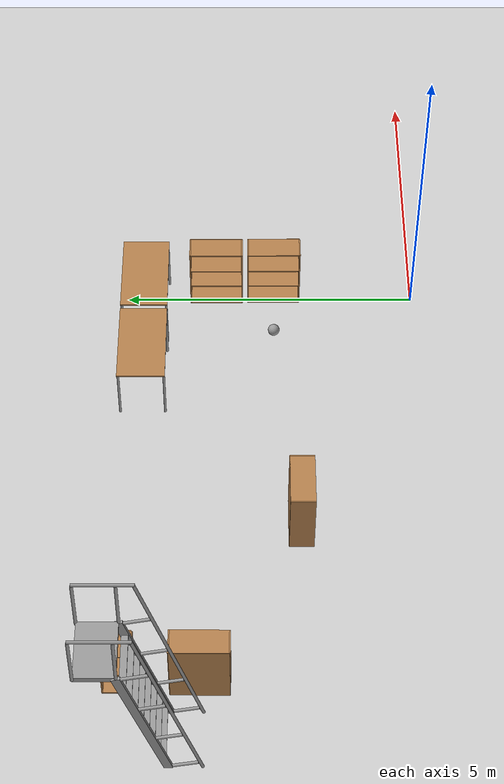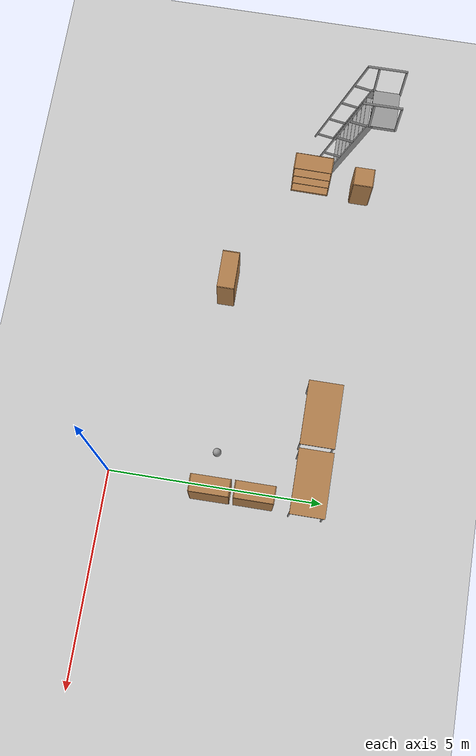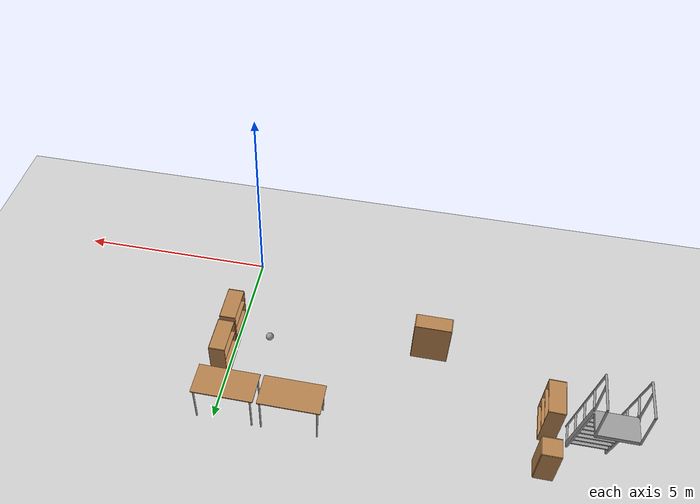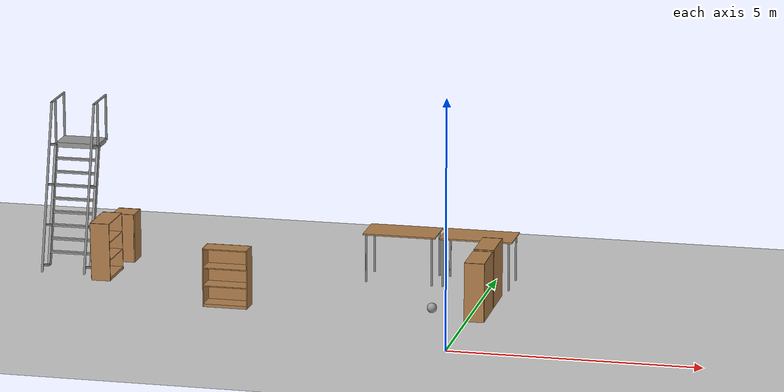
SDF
<sdf version="1.6">
 <world name="default">
  <model name="ground_plane">
   <static>1</static>
   <link name="link">
    <collision name="collision">
     <geometry><plane><normal>0 0 1</normal><size>100 100</size></plane></geometry>
     <surface>
      <contact><collide_bitmask>65535</collide_bitmask></contact>
      <friction><ode><mu>100</mu><mu2>50</mu2></ode></friction>
     </surface>
    </collision>
    <visual name="visual">
     <cast_shadows>0</cast_shadows>
     <geometry><plane><normal>0 0 1</normal><size>100 100</size></plane></geometry>
     <material>
      <script><uri>file://media/materials/scripts/gazebo.material</uri><name>Gazebo/Grey</name></script>
     </material>
    </visual>
   </link>
  </model>
  <model name="cabinet">
   <static>1</static>
   <link name="cabinet_bottom_plate">
    <inertial>
     <pose>0 0 -1 0 -0 0</pose>
     <inertia><ixx>2.05</ixx><ixy>0</ixy><ixz>0</ixz><iyy>2.05</iyy><iyz>0</iyz><izz>2.05</izz></inertia>
     <mass>25</mass>
    </inertial>
    <collision name="cabinet_bottom_plate_geom">
     <pose>0 0 0.01 0 -0 0</pose>
     <geometry><box><size>0.45 0.45 0.02</size></box></geometry>
    </collision>
    <visual name="cabinet_bottom_plate_geom_visual">
     <pose>0 0 0.01 0 -0 0</pose>
     <geometry><box><size>0.45 0.45 0.02</size></box></geometry>
     <material>
      <script><uri>file://media/materials/scripts/gazebo.material</uri><name>Gazebo/Wood</name></script>
     </material>
    </visual>
    <collision name="cabinet_bottom_plate_geom_cabinet_back_plate">
     <pose>0.235 0 0.51 0 -0 0</pose>
     <geometry><box><size>0.02 0.45 1.02</size></box></geometry>
    </collision>
    <visual name="cabinet_bottom_plate_geom_cabinet_back_plate_visual">
     <pose>0.235 0 0.51 0 -0 0</pose>
     <geometry><box><size>0.02 0.45 1.02</size></box></geometry>
     <material>
      <script><uri>file://media/materials/scripts/gazebo.material</uri><name>Gazebo/Wood</name></script>
     </material>
    </visual>
    <collision name="cabinet_bottom_plate_geom_cabinet_left_plate">
     <pose>0 0.235 0.51 0 -0 0</pose>
     <geometry><box><size>0.45 0.02 1.02</size></box></geometry>
    </collision>
    <visual name="cabinet_bottom_plate_geom_cabinet_left_plate_visual">
     <pose>0 0.235 0.51 0 -0 0</pose>
     <geometry><box><size>0.45 0.02 1.02</size></box></geometry>
     <material>
      <script><uri>file://media/materials/scripts/gazebo.material</uri><name>Gazebo/Wood</name></script>
     </material>
    </visual>
    <collision name="cabinet_bottom_plate_geom_cabinet_middle_plate">
     <pose>0 0 0.51 0 -0 0</pose>
     <geometry><box><size>0.45 0.45 0.02</size></box></geometry>
    </collision>
    <visual name="cabinet_bottom_plate_geom_cabinet_middle_plate_visual">
     <pose>0 0 0.51 0 -0 0</pose>
     <geometry><box><size>0.45 0.45 0.02</size></box></geometry>
     <material>
      <script><uri>file://media/materials/scripts/gazebo.material</uri><name>Gazebo/Wood</name></script>
     </material>
    </visual>
    <collision name="cabinet_bottom_plate_geom_cabinet_right_plate">
     <pose>0 -0.235 0.51 0 -0 0</pose>
     <geometry><box><size>0.45 0.02 1.02</size></box></geometry>
    </collision>
    <visual name="cabinet_bottom_plate_geom_cabinet_right_plate_visual">
     <pose>0 -0.235 0.51 0 -0 0</pose>
     <geometry><box><size>0.45 0.02 1.02</size></box></geometry>
     <material>
      <script><uri>file://media/materials/scripts/gazebo.material</uri><name>Gazebo/Wood</name></script>
     </material>
    </visual>
    <collision name="cabinet_bottom_plate_geom_cabinet_top_plate">
     <pose>0 0 1.01 0 -0 0</pose>
     <geometry><box><size>0.45 0.45 0.02</size></box></geometry>
    </collision>
    <visual name="cabinet_bottom_plate_geom_cabinet_top_plate_visual">
     <pose>0 0 1.01 0 -0 0</pose>
     <geometry><box><size>0.45 0.45 0.02</size></box></geometry>
     <material>
      <script><uri>file://media/materials/scripts/gazebo.material</uri><name>Gazebo/Wood</name></script>
     </material>
    </visual>
   </link>
   <pose>-7.79073 4.85276 0 0 -0 0</pose>
  </model>
  <model name="bookshelf">
   <static>1</static>
   <link name="link">
    <inertial><mass>1</mass></inertial>
    <collision name="back">
     <pose>0 0.005 0.6 0 -0 0</pose>
     <geometry><box><size>0.9 0.01 1.2</size></box></geometry>
    </collision>
    <visual name="visual1">
     <pose>0 0.005 0.6 0 -0 0</pose>
     <geometry><box><size>0.9 0.01 1.2</size></box></geometry>
     <material>
      <script><uri>file://media/materials/scripts/gazebo.material</uri><name>Gazebo/Wood</name></script>
     </material>
    </visual>
    <collision name="left_side">
     <pose>0.45 -0.195 0.6 0 -0 0</pose>
     <geometry><box><size>0.02 0.4 1.2</size></box></geometry>
    </collision>
    <visual name="visual2">
     <pose>0.45 -0.195 0.6 0 -0 0</pose>
     <geometry><box><size>0.02 0.4 1.2</size></box></geometry>
     <material>
      <script><uri>file://media/materials/scripts/gazebo.material</uri><name>Gazebo/Wood</name></script>
     </material>
    </visual>
    <collision name="right_side">
     <pose>-0.45 -0.195 0.6 0 -0 0</pose>
     <geometry><box><size>0.02 0.4 1.2</size></box></geometry>
    </collision>
    <visual name="visual3">
     <pose>-0.45 -0.195 0.6 0 -0 0</pose>
     <geometry><box><size>0.02 0.4 1.2</size></box></geometry>
     <material>
      <script><uri>file://media/materials/scripts/gazebo.material</uri><name>Gazebo/Wood</name></script>
     </material>
    </visual>
    <collision name="bottom">
     <pose>0 -0.195 0.03 0 -0 0</pose>
     <geometry><box><size>0.88 0.4 0.06</size></box></geometry>
    </collision>
    <visual name="visual4">
     <pose>0 -0.195 0.03 0 -0 0</pose>
     <geometry><box><size>0.88 0.4 0.06</size></box></geometry>
     <material>
      <script><uri>file://media/materials/scripts/gazebo.material</uri><name>Gazebo/Wood</name></script>
     </material>
    </visual>
    <collision name="top">
     <pose>0 -0.195 1.19 0 -0 0</pose>
     <geometry><box><size>0.88 0.4 0.02</size></box></geometry>
    </collision>
    <visual name="visual5">
     <pose>0 -0.195 1.19 0 -0 0</pose>
     <geometry><box><size>0.88 0.4 0.02</size></box></geometry>
     <material>
      <script><uri>file://media/materials/scripts/gazebo.material</uri><name>Gazebo/Wood</name></script>
     </material>
    </visual>
    <collision name="low_shelf">
     <pose>0 -0.195 0.43 0 -0 0</pose>
     <geometry><box><size>0.88 0.4 0.02</size></box></geometry>
    </collision>
    <visual name="visual6">
     <pose>0 -0.195 0.43 0 -0 0</pose>
     <geometry><box><size>0.88 0.4 0.02</size></box></geometry>
     <material>
      <script><uri>file://media/materials/scripts/gazebo.material</uri><name>Gazebo/Wood</name></script>
     </material>
    </visual>
    <collision name="high_shelf">
     <pose>0 -0.195 0.8 0 -0 0</pose>
     <geometry><box><size>0.88 0.4 0.02</size></box></geometry>
    </collision>
    <visual name="visual7">
     <pose>0 -0.195 0.8 0 -0 0</pose>
     <geometry><box><size>0.88 0.4 0.02</size></box></geometry>
     <material>
      <script><uri>file://media/materials/scripts/gazebo.material</uri><name>Gazebo/Wood</name></script>
     </material>
    </visual>
   </link>
   <pose>-4.88239 2.23385 0 0 -0 0</pose>
  </model>
  <model name="table_0">
   <static>1</static>
   <link name="link">
    <collision name="surface">
     <pose>0 0 1 0 -0 0</pose>
     <geometry><box><size>1.5 0.8 0.03</size></box></geometry>
     <surface><friction><ode><mu>0.6</mu><mu2>0.6</mu2></ode></friction></surface>
    </collision>
    <visual name="visual1">
     <pose>0 0 1 0 -0 0</pose>
     <geometry><box><size>1.5 0.8 0.03</size></box></geometry>
     <material>
      <script><uri>file://media/materials/scripts/gazebo.material</uri><name>Gazebo/Wood</name></script>
     </material>
    </visual>
    <collision name="front_left_leg">
     <pose>0.68 0.38 0.5 0 -0 0</pose>
     <geometry><cylinder><radius>0.02</radius><length>1</length></cylinder></geometry>
    </collision>
    <visual name="front_left_leg">
     <pose>0.68 0.38 0.5 0 -0 0</pose>
     <geometry><cylinder><radius>0.02</radius><length>1</length></cylinder></geometry>
     <material>
      <script><uri>file://media/materials/scripts/gazebo.material</uri><name>Gazebo/Grey</name></script>
     </material>
    </visual>
    <collision name="front_right_leg">
     <pose>0.68 -0.38 0.5 0 -0 0</pose>
     <geometry><cylinder><radius>0.02</radius><length>1</length></cylinder></geometry>
    </collision>
    <visual name="front_right_leg">
     <pose>0.68 -0.38 0.5 0 -0 0</pose>
     <geometry><cylinder><radius>0.02</radius><length>1</length></cylinder></geometry>
     <material>
      <script><uri>file://media/materials/scripts/gazebo.material</uri><name>Gazebo/Grey</name></script>
     </material>
    </visual>
    <collision name="back_right_leg">
     <pose>-0.68 -0.38 0.5 0 -0 0</pose>
     <geometry><cylinder><radius>0.02</radius><length>1</length></cylinder></geometry>
    </collision>
    <visual name="back_right_leg">
     <pose>-0.68 -0.38 0.5 0 -0 0</pose>
     <geometry><cylinder><radius>0.02</radius><length>1</length></cylinder></geometry>
     <material>
      <script><uri>file://media/materials/scripts/gazebo.material</uri><name>Gazebo/Grey</name></script>
     </material>
    </visual>
    <collision name="back_left_leg">
     <pose>-0.68 0.38 0.5 0 -0 0</pose>
     <geometry><cylinder><radius>0.02</radius><length>1</length></cylinder></geometry>
    </collision>
    <visual name="back_left_leg">
     <pose>-0.68 0.38 0.5 0 -0 0</pose>
     <geometry><cylinder><radius>0.02</radius><length>1</length></cylinder></geometry>
     <material>
      <script><uri>file://media/materials/scripts/gazebo.material</uri><name>Gazebo/Grey</name></script>
     </material>
    </visual>
   </link>
   <pose>-0.288993 4.6714 0 0 -0 0</pose>
  </model>
  <model name="table_1">
   <static>1</static>
   <link name="link">
    <collision name="surface">
     <pose>0 0 1 0 -0 0</pose>
     <geometry><box><size>1.5 0.8 0.03</size></box></geometry>
     <surface><friction><ode><mu>0.6</mu><mu2>0.6</mu2></ode></friction></surface>
    </collision>
    <visual name="visual1">
     <pose>0 0 1 0 -0 0</pose>
     <geometry><box><size>1.5 0.8 0.03</size></box></geometry>
     <material>
      <script><uri>file://media/materials/scripts/gazebo.material</uri><name>Gazebo/Wood</name></script>
     </material>
    </visual>
    <collision name="front_left_leg">
     <pose>0.68 0.38 0.5 0 -0 0</pose>
     <geometry><cylinder><radius>0.02</radius><length>1</length></cylinder></geometry>
    </collision>
    <visual name="front_left_leg">
     <pose>0.68 0.38 0.5 0 -0 0</pose>
     <geometry><cylinder><radius>0.02</radius><length>1</length></cylinder></geometry>
     <material>
      <script><uri>file://media/materials/scripts/gazebo.material</uri><name>Gazebo/Grey</name></script>
     </material>
    </visual>
    <collision name="front_right_leg">
     <pose>0.68 -0.38 0.5 0 -0 0</pose>
     <geometry><cylinder><radius>0.02</radius><length>1</length></cylinder></geometry>
    </collision>
    <visual name="front_right_leg">
     <pose>0.68 -0.38 0.5 0 -0 0</pose>
     <geometry><cylinder><radius>0.02</radius><length>1</length></cylinder></geometry>
     <material>
      <script><uri>file://media/materials/scripts/gazebo.material</uri><name>Gazebo/Grey</name></script>
     </material>
    </visual>
    <collision name="back_right_leg">
     <pose>-0.68 -0.38 0.5 0 -0 0</pose>
     <geometry><cylinder><radius>0.02</radius><length>1</length></cylinder></geometry>
    </collision>
    <visual name="back_right_leg">
     <pose>-0.68 -0.38 0.5 0 -0 0</pose>
     <geometry><cylinder><radius>0.02</radius><length>1</length></cylinder></geometry>
     <material>
      <script><uri>file://media/materials/scripts/gazebo.material</uri><name>Gazebo/Grey</name></script>
     </material>
    </visual>
    <collision name="back_left_leg">
     <pose>-0.68 0.38 0.5 0 -0 0</pose>
     <geometry><cylinder><radius>0.02</radius><length>1</length></cylinder></geometry>
    </collision>
    <visual name="back_left_leg">
     <pose>-0.68 0.38 0.5 0 -0 0</pose>
     <geometry><cylinder><radius>0.02</radius><length>1</length></cylinder></geometry>
     <material>
      <script><uri>file://media/materials/scripts/gazebo.material</uri><name>Gazebo/Grey</name></script>
     </material>
    </visual>
   </link>
   <pose>-1.87609 4.67031 0 0 -0 0</pose>
  </model>
  <model name="my_ball">
   <link name="link_0">
    <inertial>
     <mass>1</mass>
     <inertia><ixx>0.1</ixx><ixy>0</ixy><ixz>0</ixz><iyy>0.1</iyy><iyz>0</iyz><izz>0.1</izz></inertia>
    </inertial>
    <visual name="visual">
     <geometry><sphere><radius>0.1</radius></sphere></geometry>
     <material>
      <lighting>1</lighting>
      <script><uri>file://media/materials/scripts/gazebo.material</uri><name>Gazebo/Grey</name></script>
      <ambient>1 1 1 1</ambient>
      <diffuse>1 1 1 1</diffuse>
      <specular>1 1 1 1</specular>
      <emissive>1 1 1 1</emissive>
      <shader type="vertex"><normal_map>__default__</normal_map></shader>
     </material>
    </visual>
    <collision name="collision">
     <geometry><sphere><radius>0.1</radius></sphere></geometry>
     <surface>
      <friction>
       <ode><mu>1</mu><mu2>1</mu2><fdir1>0 0 0</fdir1><slip1>0</slip1><slip2>0</slip2></ode>
       <torsional>
        <coefficient>1</coefficient>
        <patch_radius>0</patch_radius>
        <surface_radius>0</surface_radius>
        <use_patch_radius>1</use_patch_radius>
        <ode><slip>0</slip></ode>
       </torsional>
      </friction>
      <bounce><restitution_coefficient>0</restitution_coefficient><threshold>1e+06</threshold></bounce>
      <contact>
       <collide_without_contact>0</collide_without_contact>
       <collide_without_contact_bitmask>1</collide_without_contact_bitmask>
       <collide_bitmask>1</collide_bitmask>
       <ode>
        <soft_cfm>0</soft_cfm>
        <soft_erp>0.2</soft_erp>
        <kp>1e+13</kp>
        <kd>1</kd>
        <max_vel>0.01</max_vel>
        <min_depth>0</min_depth>
       </ode>
       <bullet>
        <split_impulse>1</split_impulse>
        <split_impulse_penetration_threshold>-0.01</split_impulse_penetration_threshold>
        <soft_cfm>0</soft_cfm>
        <soft_erp>0.2</soft_erp>
        <kp>1e+13</kp>
        <kd>1</kd>
       </bullet>
      </contact>
     </surface>
    </collision>
   </link>
   <static>0</static>
   <pose>-0.794448 2.43993 0.1 3.07443 0.462615 -1.17586</pose>
  </model>
  <model name="bookshelf_0">
   <static>1</static>
   <link name="link">
    <inertial><mass>1</mass></inertial>
    <collision name="back">
     <pose>0 0.005 0.6 0 -0 0</pose>
     <geometry><box><size>0.9 0.01 1.2</size></box></geometry>
    </collision>
    <visual name="visual1">
     <pose>0 0.005 0.6 0 -0 0</pose>
     <geometry><box><size>0.9 0.01 1.2</size></box></geometry>
     <material>
      <script><uri>file://media/materials/scripts/gazebo.material</uri><name>Gazebo/Wood</name></script>
     </material>
    </visual>
    <collision name="left_side">
     <pose>0.45 -0.195 0.6 0 -0 0</pose>
     <geometry><box><size>0.02 0.4 1.2</size></box></geometry>
    </collision>
    <visual name="visual2">
     <pose>0.45 -0.195 0.6 0 -0 0</pose>
     <geometry><box><size>0.02 0.4 1.2</size></box></geometry>
     <material>
      <script><uri>file://media/materials/scripts/gazebo.material</uri><name>Gazebo/Wood</name></script>
     </material>
    </visual>
    <collision name="right_side">
     <pose>-0.45 -0.195 0.6 0 -0 0</pose>
     <geometry><box><size>0.02 0.4 1.2</size></box></geometry>
    </collision>
    <visual name="visual3">
     <pose>-0.45 -0.195 0.6 0 -0 0</pose>
     <geometry><box><size>0.02 0.4 1.2</size></box></geometry>
     <material>
      <script><uri>file://media/materials/scripts/gazebo.material</uri><name>Gazebo/Wood</name></script>
     </material>
    </visual>
    <collision name="bottom">
     <pose>0 -0.195 0.03 0 -0 0</pose>
     <geometry><box><size>0.88 0.4 0.06</size></box></geometry>
    </collision>
    <visual name="visual4">
     <pose>0 -0.195 0.03 0 -0 0</pose>
     <geometry><box><size>0.88 0.4 0.06</size></box></geometry>
     <material>
      <script><uri>file://media/materials/scripts/gazebo.material</uri><name>Gazebo/Wood</name></script>
     </material>
    </visual>
    <collision name="top">
     <pose>0 -0.195 1.19 0 -0 0</pose>
     <geometry><box><size>0.88 0.4 0.02</size></box></geometry>
    </collision>
    <visual name="visual5">
     <pose>0 -0.195 1.19 0 -0 0</pose>
     <geometry><box><size>0.88 0.4 0.02</size></box></geometry>
     <material>
      <script><uri>file://media/materials/scripts/gazebo.material</uri><name>Gazebo/Wood</name></script>
     </material>
    </visual>
    <collision name="low_shelf">
     <pose>0 -0.195 0.43 0 -0 0</pose>
     <geometry><box><size>0.88 0.4 0.02</size></box></geometry>
    </collision>
    <visual name="visual6">
     <pose>0 -0.195 0.43 0 -0 0</pose>
     <geometry><box><size>0.88 0.4 0.02</size></box></geometry>
     <material>
      <script><uri>file://media/materials/scripts/gazebo.material</uri><name>Gazebo/Wood</name></script>
     </material>
    </visual>
    <collision name="high_shelf">
     <pose>0 -0.195 0.8 0 -0 0</pose>
     <geometry><box><size>0.88 0.4 0.02</size></box></geometry>
    </collision>
    <visual name="visual7">
     <pose>0 -0.195 0.8 0 -0 0</pose>
     <geometry><box><size>0.88 0.4 0.02</size></box></geometry>
     <material>
      <script><uri>file://media/materials/scripts/gazebo.material</uri><name>Gazebo/Wood</name></script>
     </material>
    </visual>
   </link>
   <pose>0.331131 3.44622 0 0 0 -1.56994</pose>
  </model>
  <model name="bookshelf_1">
   <static>1</static>
   <link name="link">
    <inertial><mass>1</mass></inertial>
    <collision name="back">
     <pose>0 0.005 0.6 0 -0 0</pose>
     <geometry><box><size>0.9 0.01 1.2</size></box></geometry>
    </collision>
    <visual name="visual1">
     <pose>0 0.005 0.6 0 -0 0</pose>
     <geometry><box><size>0.9 0.01 1.2</size></box></geometry>
     <material>
      <script><uri>file://media/materials/scripts/gazebo.material</uri><name>Gazebo/Wood</name></script>
     </material>
    </visual>
    <collision name="left_side">
     <pose>0.45 -0.195 0.6 0 -0 0</pose>
     <geometry><box><size>0.02 0.4 1.2</size></box></geometry>
    </collision>
    <visual name="visual2">
     <pose>0.45 -0.195 0.6 0 -0 0</pose>
     <geometry><box><size>0.02 0.4 1.2</size></box></geometry>
     <material>
      <script><uri>file://media/materials/scripts/gazebo.material</uri><name>Gazebo/Wood</name></script>
     </material>
    </visual>
    <collision name="right_side">
     <pose>-0.45 -0.195 0.6 0 -0 0</pose>
     <geometry><box><size>0.02 0.4 1.2</size></box></geometry>
    </collision>
    <visual name="visual3">
     <pose>-0.45 -0.195 0.6 0 -0 0</pose>
     <geometry><box><size>0.02 0.4 1.2</size></box></geometry>
     <material>
      <script><uri>file://media/materials/scripts/gazebo.material</uri><name>Gazebo/Wood</name></script>
     </material>
    </visual>
    <collision name="bottom">
     <pose>0 -0.195 0.03 0 -0 0</pose>
     <geometry><box><size>0.88 0.4 0.06</size></box></geometry>
    </collision>
    <visual name="visual4">
     <pose>0 -0.195 0.03 0 -0 0</pose>
     <geometry><box><size>0.88 0.4 0.06</size></box></geometry>
     <material>
      <script><uri>file://media/materials/scripts/gazebo.material</uri><name>Gazebo/Wood</name></script>
     </material>
    </visual>
    <collision name="top">
     <pose>0 -0.195 1.19 0 -0 0</pose>
     <geometry><box><size>0.88 0.4 0.02</size></box></geometry>
    </collision>
    <visual name="visual5">
     <pose>0 -0.195 1.19 0 -0 0</pose>
     <geometry><box><size>0.88 0.4 0.02</size></box></geometry>
     <material>
      <script><uri>file://media/materials/scripts/gazebo.material</uri><name>Gazebo/Wood</name></script>
     </material>
    </visual>
    <collision name="low_shelf">
     <pose>0 -0.195 0.43 0 -0 0</pose>
     <geometry><box><size>0.88 0.4 0.02</size></box></geometry>
    </collision>
    <visual name="visual6">
     <pose>0 -0.195 0.43 0 -0 0</pose>
     <geometry><box><size>0.88 0.4 0.02</size></box></geometry>
     <material>
      <script><uri>file://media/materials/scripts/gazebo.material</uri><name>Gazebo/Wood</name></script>
     </material>
    </visual>
    <collision name="high_shelf">
     <pose>0 -0.195 0.8 0 -0 0</pose>
     <geometry><box><size>0.88 0.4 0.02</size></box></geometry>
    </collision>
    <visual name="visual7">
     <pose>0 -0.195 0.8 0 -0 0</pose>
     <geometry><box><size>0.88 0.4 0.02</size></box></geometry>
     <material>
      <script><uri>file://media/materials/scripts/gazebo.material</uri><name>Gazebo/Wood</name></script>
     </material>
    </visual>
   </link>
   <pose>0.338625 2.44277 0 0 0 -1.56441</pose>
  </model>
  <model name="bookshelf_4">
   <static>1</static>
   <link name="link">
    <inertial><mass>1</mass></inertial>
    <collision name="back">
     <pose>0 0.005 0.6 0 -0 0</pose>
     <geometry><box><size>0.9 0.01 1.2</size></box></geometry>
    </collision>
    <visual name="visual1">
     <pose>0 0.005 0.6 0 -0 0</pose>
     <geometry><box><size>0.9 0.01 1.2</size></box></geometry>
     <material>
      <script><uri>file://media/materials/scripts/gazebo.material</uri><name>Gazebo/Wood</name></script>
     </material>
    </visual>
    <collision name="left_side">
     <pose>0.45 -0.195 0.6 0 -0 0</pose>
     <geometry><box><size>0.02 0.4 1.2</size></box></geometry>
    </collision>
    <visual name="visual2">
     <pose>0.45 -0.195 0.6 0 -0 0</pose>
     <geometry><box><size>0.02 0.4 1.2</size></box></geometry>
     <material>
      <script><uri>file://media/materials/scripts/gazebo.material</uri><name>Gazebo/Wood</name></script>
     </material>
    </visual>
    <collision name="right_side">
     <pose>-0.45 -0.195 0.6 0 -0 0</pose>
     <geometry><box><size>0.02 0.4 1.2</size></box></geometry>
    </collision>
    <visual name="visual3">
     <pose>-0.45 -0.195 0.6 0 -0 0</pose>
     <geometry><box><size>0.02 0.4 1.2</size></box></geometry>
     <material>
      <script><uri>file://media/materials/scripts/gazebo.material</uri><name>Gazebo/Wood</name></script>
     </material>
    </visual>
    <collision name="bottom">
     <pose>0 -0.195 0.03 0 -0 0</pose>
     <geometry><box><size>0.88 0.4 0.06</size></box></geometry>
    </collision>
    <visual name="visual4">
     <pose>0 -0.195 0.03 0 -0 0</pose>
     <geometry><box><size>0.88 0.4 0.06</size></box></geometry>
     <material>
      <script><uri>file://media/materials/scripts/gazebo.material</uri><name>Gazebo/Wood</name></script>
     </material>
    </visual>
    <collision name="top">
     <pose>0 -0.195 1.19 0 -0 0</pose>
     <geometry><box><size>0.88 0.4 0.02</size></box></geometry>
    </collision>
    <visual name="visual5">
     <pose>0 -0.195 1.19 0 -0 0</pose>
     <geometry><box><size>0.88 0.4 0.02</size></box></geometry>
     <material>
      <script><uri>file://media/materials/scripts/gazebo.material</uri><name>Gazebo/Wood</name></script>
     </material>
    </visual>
    <collision name="low_shelf">
     <pose>0 -0.195 0.43 0 -0 0</pose>
     <geometry><box><size>0.88 0.4 0.02</size></box></geometry>
    </collision>
    <visual name="visual6">
     <pose>0 -0.195 0.43 0 -0 0</pose>
     <geometry><box><size>0.88 0.4 0.02</size></box></geometry>
     <material>
      <script><uri>file://media/materials/scripts/gazebo.material</uri><name>Gazebo/Wood</name></script>
     </material>
    </visual>
    <collision name="high_shelf">
     <pose>0 -0.195 0.8 0 -0 0</pose>
     <geometry><box><size>0.88 0.4 0.02</size></box></geometry>
    </collision>
    <visual name="visual7">
     <pose>0 -0.195 0.8 0 -0 0</pose>
     <geometry><box><size>0.88 0.4 0.02</size></box></geometry>
     <material>
      <script><uri>file://media/materials/scripts/gazebo.material</uri><name>Gazebo/Wood</name></script>
     </material>
    </visual>
   </link>
   <pose>-8.03873 3.61966 0 -0.012154 -0.00052 1.5612</pose>
  </model>
  <model name="ladder_75deg_2rails">
   <static>1</static>
   <link name="step0">
    <pose>0 0.071453 0.266667 0 -0 0</pose>
    <inertial>
     <mass>9.75482</mass>
     <inertia>
      <ixx>0.00957124</ixx>
      <iyy>0.65963</iyy>
      <izz>0.666842</izz>
      <ixy>0</ixy>
      <ixz>0</ixz>
      <iyz>0</iyz>
     </inertia>
    </inertial>
    <collision name="collision"><geometry><box><size>0.9 0.1016 0.0381</size></box></geometry></collision>
    <visual name="visual">
     <geometry><box><size>0.9 0.1016 0.0381</size></box></geometry>
     <material>
      <script><uri>file://media/materials/scripts/gazebo.material</uri><name>Gazebo/Grey</name></script>
     </material>
    </visual>
   </link>
   <link name="step1">
    <pose>0 0.142906 0.533333 0 -0 0</pose>
    <inertial>
     <mass>9.75482</mass>
     <inertia>
      <ixx>0.00957124</ixx>
      <iyy>0.65963</iyy>
      <izz>0.666842</izz>
      <ixy>0</ixy>
      <ixz>0</ixz>
      <iyz>0</iyz>
     </inertia>
    </inertial>
    <collision name="collision"><geometry><box><size>0.9 0.1016 0.0381</size></box></geometry></collision>
    <visual name="visual">
     <geometry><box><size>0.9 0.1016 0.0381</size></box></geometry>
     <material>
      <script><uri>file://media/materials/scripts/gazebo.material</uri><name>Gazebo/Grey</name></script>
     </material>
    </visual>
   </link>
   <link name="step2">
    <pose>0 0.214359 0.8 0 -0 0</pose>
    <inertial>
     <mass>9.75482</mass>
     <inertia>
      <ixx>0.00957124</ixx>
      <iyy>0.65963</iyy>
      <izz>0.666842</izz>
      <ixy>0</ixy>
      <ixz>0</ixz>
      <iyz>0</iyz>
     </inertia>
    </inertial>
    <collision name="collision"><geometry><box><size>0.9 0.1016 0.0381</size></box></geometry></collision>
    <visual name="visual">
     <geometry><box><size>0.9 0.1016 0.0381</size></box></geometry>
     <material>
      <script><uri>file://media/materials/scripts/gazebo.material</uri><name>Gazebo/Grey</name></script>
     </material>
    </visual>
   </link>
   <link name="step3">
    <pose>0 0.285812 1.06667 0 -0 0</pose>
    <inertial>
     <mass>9.75482</mass>
     <inertia>
      <ixx>0.00957124</ixx>
      <iyy>0.65963</iyy>
      <izz>0.666842</izz>
      <ixy>0</ixy>
      <ixz>0</ixz>
      <iyz>0</iyz>
     </inertia>
    </inertial>
    <collision name="collision"><geometry><box><size>0.9 0.1016 0.0381</size></box></geometry></collision>
    <visual name="visual">
     <geometry><box><size>0.9 0.1016 0.0381</size></box></geometry>
     <material>
      <script><uri>file://media/materials/scripts/gazebo.material</uri><name>Gazebo/Grey</name></script>
     </material>
    </visual>
   </link>
   <link name="step4">
    <pose>0 0.357266 1.33333 0 -0 0</pose>
    <inertial>
     <mass>9.75482</mass>
     <inertia>
      <ixx>0.00957124</ixx>
      <iyy>0.65963</iyy>
      <izz>0.666842</izz>
      <ixy>0</ixy>
      <ixz>0</ixz>
      <iyz>0</iyz>
     </inertia>
    </inertial>
    <collision name="collision"><geometry><box><size>0.9 0.1016 0.0381</size></box></geometry></collision>
    <visual name="visual">
     <geometry><box><size>0.9 0.1016 0.0381</size></box></geometry>
     <material>
      <script><uri>file://media/materials/scripts/gazebo.material</uri><name>Gazebo/Grey</name></script>
     </material>
    </visual>
   </link>
   <link name="step5">
    <pose>0 0.428719 1.6 0 -0 0</pose>
    <inertial>
     <mass>9.75482</mass>
     <inertia>
      <ixx>0.00957124</ixx>
      <iyy>0.65963</iyy>
      <izz>0.666842</izz>
      <ixy>0</ixy>
      <ixz>0</ixz>
      <iyz>0</iyz>
     </inertia>
    </inertial>
    <collision name="collision"><geometry><box><size>0.9 0.1016 0.0381</size></box></geometry></collision>
    <visual name="visual">
     <geometry><box><size>0.9 0.1016 0.0381</size></box></geometry>
     <material>
      <script><uri>file://media/materials/scripts/gazebo.material</uri><name>Gazebo/Grey</name></script>
     </material>
    </visual>
   </link>
   <link name="step6">
    <pose>0 0.500172 1.86667 0 -0 0</pose>
    <inertial>
     <mass>9.75482</mass>
     <inertia>
      <ixx>0.00957124</ixx>
      <iyy>0.65963</iyy>
      <izz>0.666842</izz>
      <ixy>0</ixy>
      <ixz>0</ixz>
      <iyz>0</iyz>
     </inertia>
    </inertial>
    <collision name="collision"><geometry><box><size>0.9 0.1016 0.0381</size></box></geometry></collision>
    <visual name="visual">
     <geometry><box><size>0.9 0.1016 0.0381</size></box></geometry>
     <material>
      <script><uri>file://media/materials/scripts/gazebo.material</uri><name>Gazebo/Grey</name></script>
     </material>
    </visual>
   </link>
   <link name="step7">
    <pose>0 0.571625 2.13333 0 -0 0</pose>
    <inertial>
     <mass>9.75482</mass>
     <inertia>
      <ixx>0.00957124</ixx>
      <iyy>0.65963</iyy>
      <izz>0.666842</izz>
      <ixy>0</ixy>
      <ixz>0</ixz>
      <iyz>0</iyz>
     </inertia>
    </inertial>
    <collision name="collision"><geometry><box><size>0.9 0.1016 0.0381</size></box></geometry></collision>
    <visual name="visual">
     <geometry><box><size>0.9 0.1016 0.0381</size></box></geometry>
     <material>
      <script><uri>file://media/materials/scripts/gazebo.material</uri><name>Gazebo/Grey</name></script>
     </material>
    </visual>
   </link>
   <link name="landing">
    <pose>0 0.943078 2.4 0 -0 0</pose>
    <inertial>
     <mass>57.6072</mass>
     <inertia><ixx>1.73518</ixx><iyy>3.89545</iyy><izz>5.6167</izz><ixy>0</ixy><ixz>0</ixz><iyz>0</iyz></inertia>
    </inertial>
    <collision name="collision"><geometry><box><size>0.9 0.6 0.1016</size></box></geometry></collision>
    <visual name="visual">
     <geometry><box><size>0.9 0.6 0.1016</size></box></geometry>
     <material>
      <script><uri>file://media/materials/scripts/gazebo.material</uri><name>Gazebo/Grey</name></script>
     </material>
    </visual>
   </link>
   <link name="left_side_wall">
    <pose>-0.45 0.321539 1.2 1.309 -0 0</pose>
    <collision name="collision"><geometry><box><size>0.0508 2.56466 0.13</size></box></geometry></collision>
    <visual name="visual">
     <geometry><box><size>0.0508 2.56466 0.13</size></box></geometry>
     <material>
      <script><uri>file://media/materials/scripts/gazebo.material</uri><name>Gazebo/Grey</name></script>
     </material>
    </visual>
   </link>
   <link name="right_side_wall">
    <pose>0.45 0.321539 1.2 1.309 -0 0</pose>
    <collision name="collision"><geometry><box><size>0.0508 2.56466 0.13</size></box></geometry></collision>
    <visual name="visual">
     <geometry><box><size>0.0508 2.56466 0.13</size></box></geometry>
     <material>
      <script><uri>file://media/materials/scripts/gazebo.material</uri><name>Gazebo/Grey</name></script>
     </material>
    </visual>
   </link>
   <link name="left_railing_long">
    <pose>-0.45 -0.053461 1.66651 -0.261799 0 0</pose>
    <collision name="collision">
     <geometry><cylinder><radius>0.02413</radius><length>3.51529</length></cylinder></geometry>
    </collision>
    <visual name="visual">
     <geometry><cylinder><radius>0.02413</radius><length>3.51529</length></cylinder></geometry>
     <material>
      <script><uri>file://media/materials/scripts/gazebo.material</uri><name>Gazebo/Grey</name></script>
     </material>
    </visual>
   </link>
   <link name="left_railing_upright0">
    <pose>-0.45 -0.210089 0.056293 1.309 -0 0</pose>
    <collision name="collision">
     <geometry><cylinder><radius>0.02413</radius><length>0.482963</length></cylinder></geometry>
    </collision>
    <visual name="visual">
     <geometry><cylinder><radius>0.02413</radius><length>0.482963</length></cylinder></geometry>
     <material>
      <script><uri>file://media/materials/scripts/gazebo.material</uri><name>Gazebo/Grey</name></script>
     </material>
    </visual>
   </link>
   <link name="left_railing_upright1">
    <pose>-0.45 0.00427 0.856293 1.309 -0 0</pose>
    <collision name="collision">
     <geometry><cylinder><radius>0.02413</radius><length>0.482963</length></cylinder></geometry>
    </collision>
    <visual name="visual">
     <geometry><cylinder><radius>0.02413</radius><length>0.482963</length></cylinder></geometry>
     <material>
      <script><uri>file://media/materials/scripts/gazebo.material</uri><name>Gazebo/Grey</name></script>
     </material>
    </visual>
   </link>
   <link name="left_railing_upright2">
    <pose>-0.45 0.21863 1.65629 1.309 -0 0</pose>
    <collision name="collision">
     <geometry><cylinder><radius>0.02413</radius><length>0.482963</length></cylinder></geometry>
    </collision>
    <visual name="visual">
     <geometry><cylinder><radius>0.02413</radius><length>0.482963</length></cylinder></geometry>
     <material>
      <script><uri>file://media/materials/scripts/gazebo.material</uri><name>Gazebo/Grey</name></script>
     </material>
    </visual>
   </link>
   <link name="left_railing_upright3">
    <pose>-0.45 0.432989 2.45629 1.309 -0 0</pose>
    <collision name="collision">
     <geometry><cylinder><radius>0.02413</radius><length>0.482963</length></cylinder></geometry>
    </collision>
    <visual name="visual">
     <geometry><cylinder><radius>0.02413</radius><length>0.482963</length></cylinder></geometry>
     <material>
      <script><uri>file://media/materials/scripts/gazebo.material</uri><name>Gazebo/Grey</name></script>
     </material>
    </visual>
   </link>
   <link name="left_railing_landing_top">
    <pose>-0.45 0.818078 3.35714 1.5708 -0 0</pose>
    <collision name="collision">
     <geometry><cylinder><radius>0.02413</radius><length>0.87413</length></cylinder></geometry>
    </collision>
    <visual name="visual">
     <geometry><cylinder><radius>0.02413</radius><length>0.87413</length></cylinder></geometry>
     <material>
      <script><uri>file://media/materials/scripts/gazebo.material</uri><name>Gazebo/Grey</name></script>
     </material>
    </visual>
   </link>
   <link name="left_railing_landing_upright_0">
    <pose>-0.45 0.643078 2.86651 0 -0 0</pose>
    <collision name="collision">
     <geometry><cylinder><radius>0.02413</radius><length>0.933013</length></cylinder></geometry>
    </collision>
    <visual name="visual">
     <geometry><cylinder><radius>0.02413</radius><length>0.933013</length></cylinder></geometry>
     <material>
      <script><uri>file://media/materials/scripts/gazebo.material</uri><name>Gazebo/Grey</name></script>
     </material>
    </visual>
   </link>
   <link name="left_railing_landing_upright_1">
    <pose>-0.45 1.24308 2.86651 0 -0 0</pose>
    <collision name="collision">
     <geometry><cylinder><radius>0.02413</radius><length>0.933013</length></cylinder></geometry>
    </collision>
    <visual name="visual">
     <geometry><cylinder><radius>0.02413</radius><length>0.933013</length></cylinder></geometry>
     <material>
      <script><uri>file://media/materials/scripts/gazebo.material</uri><name>Gazebo/Grey</name></script>
     </material>
    </visual>
   </link>
   <link name="right_railing_long">
    <pose>0.45 -0.053461 1.66651 -0.261799 0 0</pose>
    <collision name="collision">
     <geometry><cylinder><radius>0.02413</radius><length>3.51529</length></cylinder></geometry>
    </collision>
    <visual name="visual">
     <geometry><cylinder><radius>0.02413</radius><length>3.51529</length></cylinder></geometry>
     <material>
      <script><uri>file://media/materials/scripts/gazebo.material</uri><name>Gazebo/Grey</name></script>
     </material>
    </visual>
   </link>
   <link name="right_railing_upright0">
    <pose>0.45 -0.210089 0.056293 1.309 -0 0</pose>
    <collision name="collision">
     <geometry><cylinder><radius>0.02413</radius><length>0.482963</length></cylinder></geometry>
    </collision>
    <visual name="visual">
     <geometry><cylinder><radius>0.02413</radius><length>0.482963</length></cylinder></geometry>
     <material>
      <script><uri>file://media/materials/scripts/gazebo.material</uri><name>Gazebo/Grey</name></script>
     </material>
    </visual>
   </link>
   <link name="right_railing_upright1">
    <pose>0.45 0.00427 0.856293 1.309 -0 0</pose>
    <collision name="collision">
     <geometry><cylinder><radius>0.02413</radius><length>0.482963</length></cylinder></geometry>
    </collision>
    <visual name="visual">
     <geometry><cylinder><radius>0.02413</radius><length>0.482963</length></cylinder></geometry>
     <material>
      <script><uri>file://media/materials/scripts/gazebo.material</uri><name>Gazebo/Grey</name></script>
     </material>
    </visual>
   </link>
   <link name="right_railing_upright2">
    <pose>0.45 0.21863 1.65629 1.309 -0 0</pose>
    <collision name="collision">
     <geometry><cylinder><radius>0.02413</radius><length>0.482963</length></cylinder></geometry>
    </collision>
    <visual name="visual">
     <geometry><cylinder><radius>0.02413</radius><length>0.482963</length></cylinder></geometry>
     <material>
      <script><uri>file://media/materials/scripts/gazebo.material</uri><name>Gazebo/Grey</name></script>
     </material>
    </visual>
   </link>
   <link name="right_railing_upright3">
    <pose>0.45 0.432989 2.45629 1.309 -0 0</pose>
    <collision name="collision">
     <geometry><cylinder><radius>0.02413</radius><length>0.482963</length></cylinder></geometry>
    </collision>
    <visual name="visual">
     <geometry><cylinder><radius>0.02413</radius><length>0.482963</length></cylinder></geometry>
     <material>
      <script><uri>file://media/materials/scripts/gazebo.material</uri><name>Gazebo/Grey</name></script>
     </material>
    </visual>
   </link>
   <link name="right_railing_landing_top">
    <pose>0.45 0.818078 3.35714 1.5708 -0 0</pose>
    <collision name="collision">
     <geometry><cylinder><radius>0.02413</radius><length>0.87413</length></cylinder></geometry>
    </collision>
    <visual name="visual">
     <geometry><cylinder><radius>0.02413</radius><length>0.87413</length></cylinder></geometry>
     <material>
      <script><uri>file://media/materials/scripts/gazebo.material</uri><name>Gazebo/Grey</name></script>
     </material>
    </visual>
   </link>
   <link name="right_railing_landing_upright_0">
    <pose>0.45 0.643078 2.86651 0 -0 0</pose>
    <collision name="collision">
     <geometry><cylinder><radius>0.02413</radius><length>0.933013</length></cylinder></geometry>
    </collision>
    <visual name="visual">
     <geometry><cylinder><radius>0.02413</radius><length>0.933013</length></cylinder></geometry>
     <material>
      <script><uri>file://media/materials/scripts/gazebo.material</uri><name>Gazebo/Grey</name></script>
     </material>
    </visual>
   </link>
   <link name="right_railing_landing_upright_1">
    <pose>0.45 1.24308 2.86651 0 -0 0</pose>
    <collision name="collision">
     <geometry><cylinder><radius>0.02413</radius><length>0.933013</length></cylinder></geometry>
    </collision>
    <visual name="visual">
     <geometry><cylinder><radius>0.02413</radius><length>0.933013</length></cylinder></geometry>
     <material>
      <script><uri>file://media/materials/scripts/gazebo.material</uri><name>Gazebo/Grey</name></script>
     </material>
    </visual>
   </link>
   <pose>-8.77681 4.06309 0 0 -0 0</pose>
  </model>
 </world>
</sdf>
